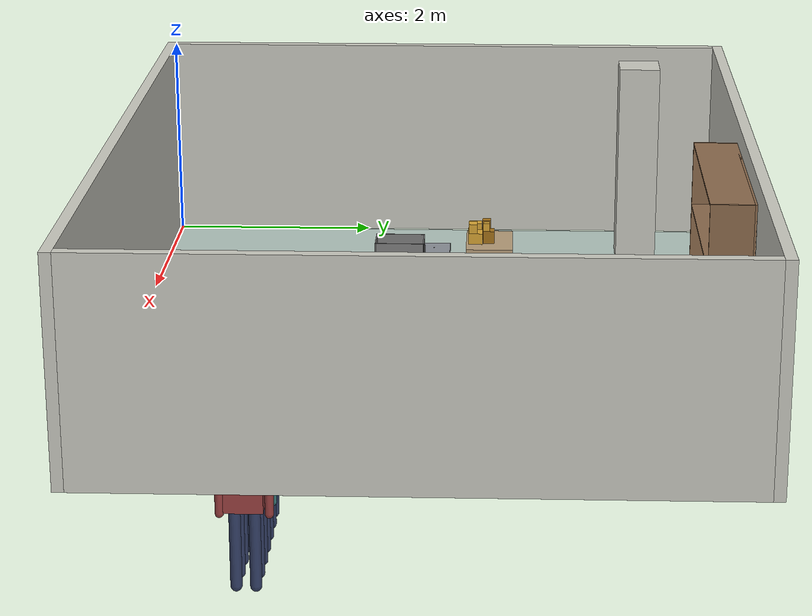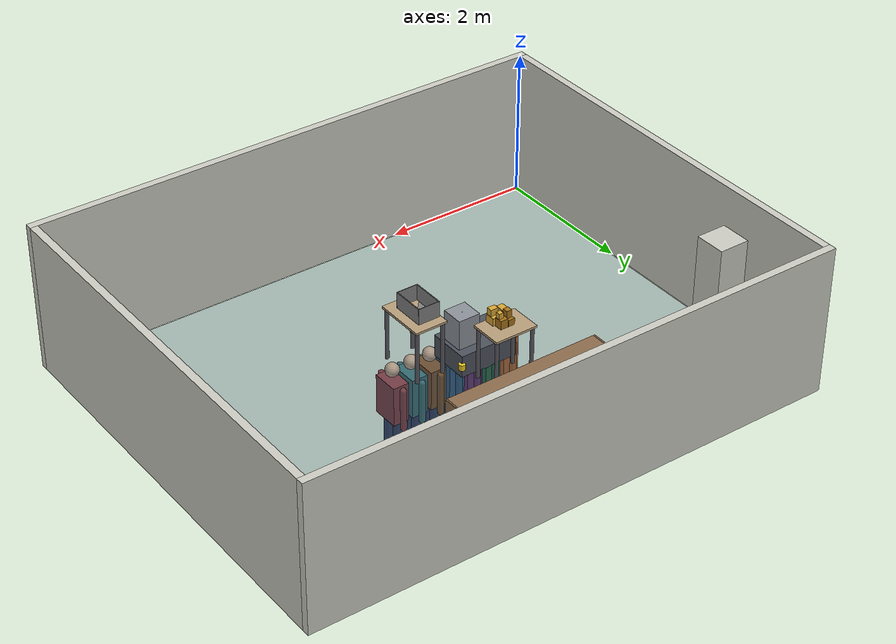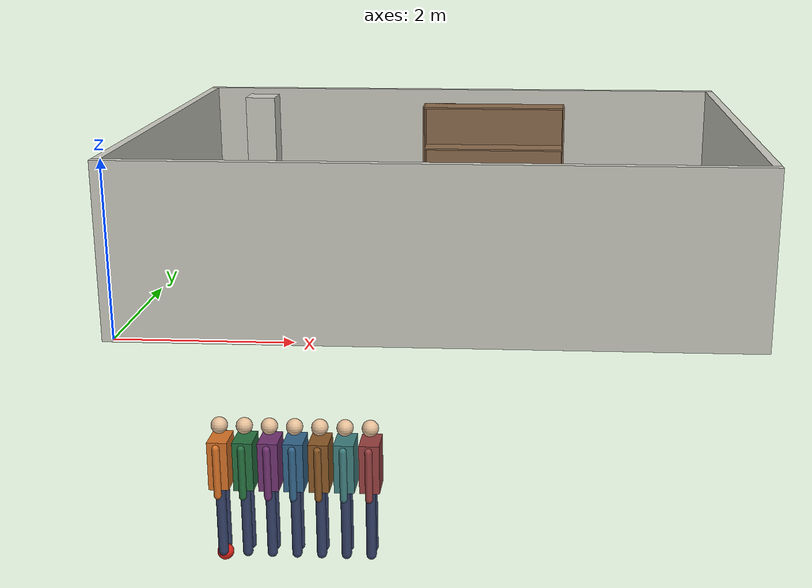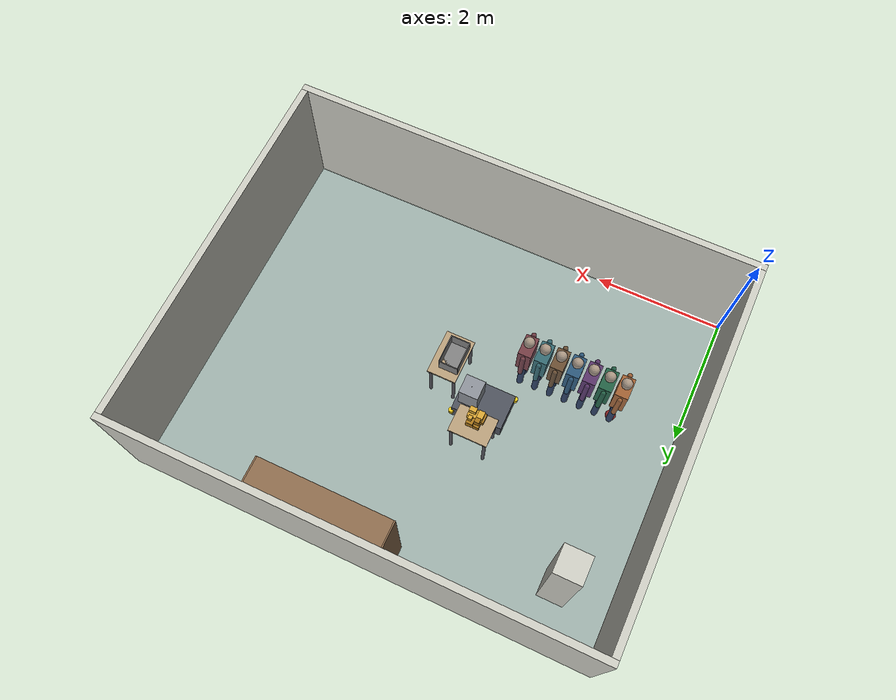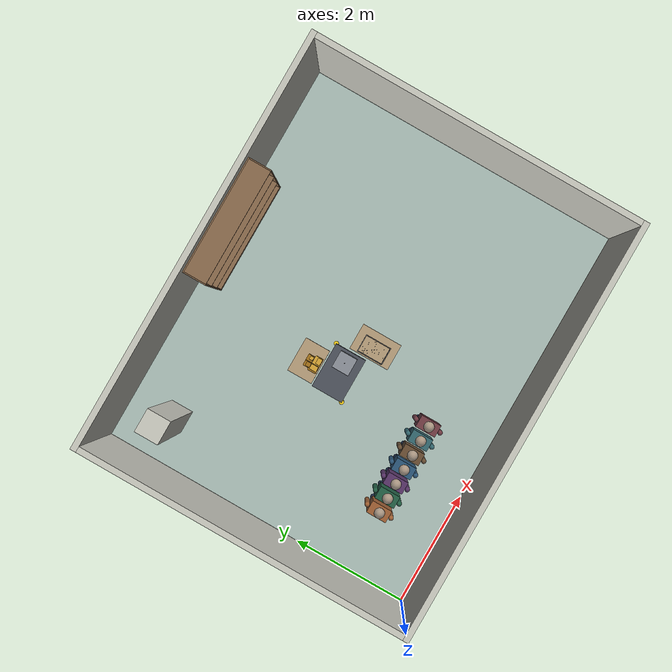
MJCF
<mujoco model="room_scene">
  <compiler angle="degree" autolimits="true"/>
  <option integrator="implicitfast" impratio="10" timestep="0.002"/>
  <!-- The old cell's extent: the same depth range for the cameras. -->
  <statistic center="3.0 2.8 0.0" extent="4.29"/>

  <visual>
    <headlight diffuse="0.6 0.6 0.6" ambient="0.3 0.3 0.3" specular="0 0 0"/>
    <rgba haze="0.15 0.25 0.35 1"/>
    <global azimuth="300" elevation="-20"/>
  </visual>

  <asset>
    <texture type="skybox" builtin="gradient" rgb1="0.3 0.5 0.7" rgb2="0 0 0" width="512" height="3072"/>
    <texture type="2d" name="groundplane" builtin="checker" mark="edge" rgb1="0.2 0.3 0.4" rgb2="0.1 0.2 0.3"
      markrgb="0.8 0.8 0.8" width="300" height="300"/>
    <material name="groundplane" texture="groundplane" texuniform="true" texrepeat="5 5" reflectance="0.2"/>
  </asset>

  <default>
    <default class="box">
      <geom condim="4" friction="0.6 0.01 0.001"/>
    </default>
    <default class="wall">
      <geom type="box" rgba="0.80 0.80 0.76 1"/>
    </default>
    <default class="shelf">
      <geom type="box" rgba="0.55 0.42 0.30 1"/>
    </default>
  </default>

  <worldbody>
    <frame name="room">
    <light pos="3.5 2.8 4" dir="0 0 -1" directional="true"/>
    <geom name="floor" pos="3.5 2.8 0" size="3.5 2.8 0.05" type="plane" material="groundplane"/>
    <geom name="wall_south" class="wall" pos="3.5 -0.05 1.0" size="3.6 0.05 1.0"/>
    <geom name="wall_north" class="wall" pos="3.5 5.65 1.0" size="3.6 0.05 1.0"/>
    <geom name="wall_west" class="wall" pos="-0.05 2.8 1.0" size="0.05 2.8 1.0"/>
    <geom name="wall_east" class="wall" pos="7.05 2.8 1.0" size="0.05 2.8 1.0"/>
    <geom name="pillar" class="wall" pos="0.8 4.8 1.0" size="0.20 0.20 1.0"/>
    <geom name="shelf_back" class="shelf" pos="4.0 5.59 0.9" size="1.0 0.01 0.9"/>
    <geom name="shelf_side_w" class="shelf" pos="3.01 5.4 0.9" size="0.01 0.20 0.9"/>
    <geom name="shelf_side_e" class="shelf" pos="4.99 5.4 0.9" size="0.01 0.20 0.9"/>
    <geom name="shelf_board0" class="shelf" pos="4.0 5.4 0.05" size="0.98 0.20 0.05"/>
    <geom name="shelf_board1" class="shelf" pos="4.0 5.4 0.60" size="0.98 0.20 0.01"/>
    <geom name="shelf_board2" class="shelf" pos="4.0 5.4 1.20" size="0.98 0.20 0.01"/>
    <geom name="shelf_board3" class="shelf" pos="4.0 5.4 1.79" size="0.98 0.20 0.01"/>
    </frame>

    <!-- The cell at scene.CELL_POSE (x, y, yaw); z = the arm's mount height. -->
    <frame name="cell" pos="3.0 2.8 0.75" euler="0 0 90">
      <include file="cell_container.xml"/>
    </frame>

    <body name="base_link" pos="2.8 2.80 0" euler="0 0 0">
      <freejoint name="base_free"/>
      <inertial pos="0.03 0 0.22" mass="110" diaginertia="3.7 6.7 8.7"/>
      <geom name="chassis" type="box" pos="0 0 0.19" size="0.40 0.28 0.15" rgba="0.30 0.32 0.36 1"/>
      <geom name="pedestal" type="box" pos="0.20 0 0.545" size="0.15 0.15 0.205" rgba="0.55 0.57 0.60 1"/>
      <site name="arm_mount" pos="0.20 0 0.75" euler="0 0 90"/>
      <site name="lidar_0" type="cylinder" pos="0.40 0.28 0.20" euler="0 0 45" size="0.04 0.04" rgba="0.95 0.80 0.10 1"/>
      <site name="lidar_1" type="cylinder" pos="-0.40 -0.28 0.20" euler="0 0 -135" size="0.04 0.04" rgba="0.95 0.80 0.10 1"/>
      <site name="imu" pos="0 0 0.20"/>
      <body name="wheel_left_mount" pos="0 0.25 0.10">
        <joint name="wheel_left_suspension" type="slide" axis="0 0 1" range="-0.02 0.02" stiffness="40000"
          springref="-0.01" damping="300"/>
        <inertial pos="0 0 0" mass="1.0" diaginertia="0.002 0.002 0.002"/>
        <body name="wheel_left">
          <joint name="wheel_left" type="hinge" axis="0 1 0" damping="0.05" armature="0.1"/>
          <inertial pos="0 0 0" mass="2.0" diaginertia="0.0054 0.01 0.0054"/>
          <geom name="wheel_left" type="ellipsoid" size="0.10 0.025 0.10"
            friction="1.0 0.005 0.0001" rgba="0.10 0.10 0.10 1"/>
        </body>
      </body>
      <body name="wheel_right_mount" pos="0 -0.25 0.10">
        <joint name="wheel_right_suspension" type="slide" axis="0 0 1" range="-0.02 0.02" stiffness="40000"
          springref="-0.01" damping="300"/>
        <inertial pos="0 0 0" mass="1.0" diaginertia="0.002 0.002 0.002"/>
        <body name="wheel_right">
          <joint name="wheel_right" type="hinge" axis="0 1 0" damping="0.05" armature="0.1"/>
          <inertial pos="0 0 0" mass="2.0" diaginertia="0.0054 0.01 0.0054"/>
          <geom name="wheel_right" type="ellipsoid" size="0.10 0.025 0.10"
            friction="1.0 0.005 0.0001" rgba="0.10 0.10 0.10 1"/>
        </body>
      </body>
      <body name="caster_fl" pos="0.32 0.20 0.04">
        <joint type="ball" damping="0.002"/>
        <geom type="sphere" size="0.04" mass="0.3" friction="0.6 0.005 0.0001" rgba="0.15 0.15 0.15 1"/>
      </body>
      <body name="caster_fr" pos="0.32 -0.20 0.04">
        <joint type="ball" damping="0.002"/>
        <geom type="sphere" size="0.04" mass="0.3" friction="0.6 0.005 0.0001" rgba="0.15 0.15 0.15 1"/>
      </body>
      <body name="caster_rl" pos="-0.32 0.20 0.04">
        <joint type="ball" damping="0.002"/>
        <geom type="sphere" size="0.04" mass="0.3" friction="0.6 0.005 0.0001" rgba="0.15 0.15 0.15 1"/>
      </body>
      <body name="caster_rr" pos="-0.32 -0.20 0.04">
        <joint type="ball" damping="0.002"/>
        <geom type="sphere" size="0.04" mass="0.3" friction="0.6 0.005 0.0001" rgba="0.15 0.15 0.15 1"/>
      </body>
    </body>

    <body name="dynamic_obstacle" mocap="true" pos="0.9 0.9 -3.0">
      <geom type="sphere" size="0.10" rgba="0.9 0.15 0.1 1" contype="0" conaffinity="0"/>
    </body>
    <body name="person_obstacle" mocap="true" pos="0.9 0.9 -3.0">
      <geom name="person_leg_l" type="capsule" fromto="0 0.10 0.06 0 0.10 0.88" size="0.06" rgba="0.20 0.25 0.40 1" contype="0" conaffinity="0"/>
      <geom name="person_leg_r" type="capsule" fromto="0 -0.10 0.06 0 -0.10 0.88" size="0.06" rgba="0.20 0.25 0.40 1" contype="0" conaffinity="0"/>
      <geom name="person_torso" type="box" pos="0 0 1.20" size="0.12 0.20 0.30" rgba="0.85 0.45 0.15 1" contype="0" conaffinity="0"/>
      <geom name="person_arm_l" type="capsule" fromto="0 0.25 0.85 0 0.25 1.45" size="0.045" rgba="0.85 0.45 0.15 1" contype="0" conaffinity="0"/>
      <geom name="person_arm_r" type="capsule" fromto="0 -0.25 0.85 0 -0.25 1.45" size="0.045" rgba="0.85 0.45 0.15 1" contype="0" conaffinity="0"/>
      <geom name="person_head" type="sphere" pos="0 0 1.65" size="0.10" rgba="0.90 0.75 0.60 1" contype="0" conaffinity="0"/>
    </body>
    <!-- More people for the mobile scenarios (person_1..6), the same size; parked
         below the floor until a scenario moves them. -->
    <body name="person_1" mocap="true" pos="1.2 0.9 -3.0">
      <geom type="capsule" fromto="0 0.10 0.06 0 0.10 0.88" size="0.06" rgba="0.20 0.25 0.40 1" contype="0" conaffinity="0"/>
      <geom type="capsule" fromto="0 -0.10 0.06 0 -0.10 0.88" size="0.06" rgba="0.20 0.25 0.40 1" contype="0" conaffinity="0"/>
      <geom type="box" pos="0 0 1.20" size="0.12 0.20 0.30" rgba="0.15 0.45 0.25 1" contype="0" conaffinity="0"/>
      <geom type="capsule" fromto="0 0.25 0.85 0 0.25 1.45" size="0.045" rgba="0.15 0.45 0.25 1" contype="0" conaffinity="0"/>
      <geom type="capsule" fromto="0 -0.25 0.85 0 -0.25 1.45" size="0.045" rgba="0.15 0.45 0.25 1" contype="0" conaffinity="0"/>
      <geom type="sphere" pos="0 0 1.65" size="0.10" rgba="0.90 0.75 0.60 1" contype="0" conaffinity="0"/>
    </body>
    <body name="person_2" mocap="true" pos="1.5 0.9 -3.0">
      <geom type="capsule" fromto="0 0.10 0.06 0 0.10 0.88" size="0.06" rgba="0.20 0.25 0.40 1" contype="0" conaffinity="0"/>
      <geom type="capsule" fromto="0 -0.10 0.06 0 -0.10 0.88" size="0.06" rgba="0.20 0.25 0.40 1" contype="0" conaffinity="0"/>
      <geom type="box" pos="0 0 1.20" size="0.12 0.20 0.30" rgba="0.45 0.20 0.45 1" contype="0" conaffinity="0"/>
      <geom type="capsule" fromto="0 0.25 0.85 0 0.25 1.45" size="0.045" rgba="0.45 0.20 0.45 1" contype="0" conaffinity="0"/>
      <geom type="capsule" fromto="0 -0.25 0.85 0 -0.25 1.45" size="0.045" rgba="0.45 0.20 0.45 1" contype="0" conaffinity="0"/>
      <geom type="sphere" pos="0 0 1.65" size="0.10" rgba="0.90 0.75 0.60 1" contype="0" conaffinity="0"/>
    </body>
    <body name="person_3" mocap="true" pos="1.8 0.9 -3.0">
      <geom type="capsule" fromto="0 0.10 0.06 0 0.10 0.88" size="0.06" rgba="0.20 0.25 0.40 1" contype="0" conaffinity="0"/>
      <geom type="capsule" fromto="0 -0.10 0.06 0 -0.10 0.88" size="0.06" rgba="0.20 0.25 0.40 1" contype="0" conaffinity="0"/>
      <geom type="box" pos="0 0 1.20" size="0.12 0.20 0.30" rgba="0.20 0.40 0.55 1" contype="0" conaffinity="0"/>
      <geom type="capsule" fromto="0 0.25 0.85 0 0.25 1.45" size="0.045" rgba="0.20 0.40 0.55 1" contype="0" conaffinity="0"/>
      <geom type="capsule" fromto="0 -0.25 0.85 0 -0.25 1.45" size="0.045" rgba="0.20 0.40 0.55 1" contype="0" conaffinity="0"/>
      <geom type="sphere" pos="0 0 1.65" size="0.10" rgba="0.90 0.75 0.60 1" contype="0" conaffinity="0"/>
    </body>
    <body name="person_4" mocap="true" pos="2.1 0.9 -3.0">
      <geom type="capsule" fromto="0 0.10 0.06 0 0.10 0.88" size="0.06" rgba="0.20 0.25 0.40 1" contype="0" conaffinity="0"/>
      <geom type="capsule" fromto="0 -0.10 0.06 0 -0.10 0.88" size="0.06" rgba="0.20 0.25 0.40 1" contype="0" conaffinity="0"/>
      <geom type="box" pos="0 0 1.20" size="0.12 0.20 0.30" rgba="0.55 0.35 0.15 1" contype="0" conaffinity="0"/>
      <geom type="capsule" fromto="0 0.25 0.85 0 0.25 1.45" size="0.045" rgba="0.55 0.35 0.15 1" contype="0" conaffinity="0"/>
      <geom type="capsule" fromto="0 -0.25 0.85 0 -0.25 1.45" size="0.045" rgba="0.55 0.35 0.15 1" contype="0" conaffinity="0"/>
      <geom type="sphere" pos="0 0 1.65" size="0.10" rgba="0.90 0.75 0.60 1" contype="0" conaffinity="0"/>
    </body>
    <body name="person_5" mocap="true" pos="2.4 0.9 -3.0">
      <geom type="capsule" fromto="0 0.10 0.06 0 0.10 0.88" size="0.06" rgba="0.20 0.25 0.40 1" contype="0" conaffinity="0"/>
      <geom type="capsule" fromto="0 -0.10 0.06 0 -0.10 0.88" size="0.06" rgba="0.20 0.25 0.40 1" contype="0" conaffinity="0"/>
      <geom type="box" pos="0 0 1.20" size="0.12 0.20 0.30" rgba="0.25 0.50 0.50 1" contype="0" conaffinity="0"/>
      <geom type="capsule" fromto="0 0.25 0.85 0 0.25 1.45" size="0.045" rgba="0.25 0.50 0.50 1" contype="0" conaffinity="0"/>
      <geom type="capsule" fromto="0 -0.25 0.85 0 -0.25 1.45" size="0.045" rgba="0.25 0.50 0.50 1" contype="0" conaffinity="0"/>
      <geom type="sphere" pos="0 0 1.65" size="0.10" rgba="0.90 0.75 0.60 1" contype="0" conaffinity="0"/>
    </body>
    <body name="person_6" mocap="true" pos="2.7 0.9 -3.0">
      <geom type="capsule" fromto="0 0.10 0.06 0 0.10 0.88" size="0.06" rgba="0.20 0.25 0.40 1" contype="0" conaffinity="0"/>
      <geom type="capsule" fromto="0 -0.10 0.06 0 -0.10 0.88" size="0.06" rgba="0.20 0.25 0.40 1" contype="0" conaffinity="0"/>
      <geom type="box" pos="0 0 1.20" size="0.12 0.20 0.30" rgba="0.60 0.25 0.25 1" contype="0" conaffinity="0"/>
      <geom type="capsule" fromto="0 0.25 0.85 0 0.25 1.45" size="0.045" rgba="0.60 0.25 0.25 1" contype="0" conaffinity="0"/>
      <geom type="capsule" fromto="0 -0.25 0.85 0 -0.25 1.45" size="0.045" rgba="0.60 0.25 0.25 1" contype="0" conaffinity="0"/>
      <geom type="sphere" pos="0 0 1.65" size="0.10" rgba="0.90 0.75 0.60 1" contype="0" conaffinity="0"/>
    </body>
  </worldbody>

  <contact>
    <!-- The wheels sit in the chassis, one body (the suspension) apart. -->
    <exclude body1="base_link" body2="wheel_left"/>
    <exclude body1="base_link" body2="wheel_right"/>
    <exclude body1="world" body2="wheel_left"/>
    <exclude body1="world" body2="wheel_right"/>
    <pair geom1="floor" geom2="wheel_left" condim="3" friction="1 1 0.005 0.0001 0.0001" solref="0.005 1"
      solimp="0.999 0.9999 0.001"/>
    <pair geom1="floor" geom2="wheel_right" condim="3" friction="1 1 0.005 0.0001 0.0001" solref="0.005 1"
      solimp="0.999 0.9999 0.001"/>
  </contact>

  <actuator>
    <motor name="wheel_left_motor" joint="wheel_left" ctrlrange="-30 30"/>
    <motor name="wheel_right_motor" joint="wheel_right" ctrlrange="-30 30"/>
  </actuator>

  <equality>
    <!-- Shared by all boxes: mujoco_sim_node sets body2 and relpose at each
         pick. -->
    <weld name="box_carry" body1="attachment" body2="cbox_0" active="false"/>
    <connect name="wheel_left_stick" body1="wheel_left" anchor="0 0 -0.10" active="false"/>
    <connect name="wheel_right_stick" body1="wheel_right" anchor="0 0 -0.10" active="false"/>
  </equality>

  <sensor>
    <!-- Wrist force/torque sensor (a flange load cell). -->
    <force name="wrist_force" site="attachment_site"/>
    <torque name="wrist_torque" site="attachment_site"/>
    <!-- The base's IMU. -->
    <gyro name="imu_gyro" site="imu"/>
    <accelerometer name="imu_accel" site="imu"/>
  </sensor>
</mujoco>

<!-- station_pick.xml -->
<mujoco model="station_pick">
    <!-- The pile's table, its top at the arm's mount height. Must match
         PICK_TABLE_BOUNDS in scene.py. -->
    <geom name="pick_table_top" type="box" pos="0.520 0.250 -0.015" size="0.220 0.300 0.015" rgba="0.72 0.62 0.48 1"/>
    <geom name="pick_table_leg0" type="cylinder" fromto="0.340 -0.010 -0.750 0.340 -0.010 -0.030" size="0.025" rgba="0.35 0.35 0.38 1"/>
    <geom name="pick_table_leg1" type="cylinder" fromto="0.700 -0.010 -0.750 0.700 -0.010 -0.030" size="0.025" rgba="0.35 0.35 0.38 1"/>
    <geom name="pick_table_leg2" type="cylinder" fromto="0.340 0.510 -0.750 0.340 0.510 -0.030" size="0.025" rgba="0.35 0.35 0.38 1"/>
    <geom name="pick_table_leg3" type="cylinder" fromto="0.700 0.510 -0.750 0.700 0.510 -0.030" size="0.025" rgba="0.35 0.35 0.38 1"/>

    <body name="cbox_0" pos="0.3937 0.3187 0.0450">
      <freejoint/>
      <inertial mass="0.2" pos="0 0 0" diaginertia="3.75e-04 5.10e-04 6.15e-04"/>
      <geom type="box" size="0.0750 0.0600 0.0450" rgba="0.65 0.45 0.10 1" class="box"/>
    </body>
    <body name="cbox_1" pos="0.3863 0.1837 0.0525">
      <freejoint/>
      <inertial mass="0.2" pos="0 0 0" diaginertia="4.88e-04 4.88e-04 6.08e-04"/>
      <geom type="box" size="0.0675 0.0675 0.0525" rgba="0.85 0.65 0.20 1" class="box"/>
    </body>
    <body name="cbox_2" pos="0.5137 0.1987 0.0600">
      <freejoint/>
      <inertial mass="0.2" pos="0 0 0" diaginertia="4.24e-04 4.24e-04 3.68e-04"/>
      <geom type="box" size="0.0525 0.0525 0.0600" rgba="0.65 0.45 0.10 1" class="box"/>
    </body>
    <body name="cbox_3" pos="0.3863 0.3037 0.1275">
      <freejoint/>
      <inertial mass="0.2" pos="0 0 0" diaginertia="2.29e-04 3.34e-04 3.75e-04"/>
      <geom type="box" size="0.0600 0.0450 0.0375" rgba="0.85 0.65 0.20 1" class="box"/>
    </body>
    <body name="cbox_4" pos="0.5212 0.3037 0.0450">
      <freejoint/>
      <inertial mass="0.2" pos="0 0 0" diaginertia="2.70e-04 2.70e-04 2.70e-04"/>
      <geom type="box" size="0.0450 0.0450 0.0450" rgba="0.65 0.45 0.10 1" class="box"/>
    </body>
    <body name="cbox_5" pos="0.3638 0.1763 0.1500">
      <freejoint/>
      <inertial mass="0.2" pos="0 0 0" diaginertia="3.19e-04 2.29e-04 2.78e-04"/>
      <geom type="box" size="0.0375 0.0525 0.0450" rgba="0.85 0.65 0.20 1" class="box"/>
    </body>
    <body name="cbox_6" pos="0.4912 0.2963 0.1425">
      <freejoint/>
      <inertial mass="0.2" pos="0 0 0" diaginertia="2.78e-04 2.78e-04 1.88e-04"/>
      <geom type="box" size="0.0375 0.0375 0.0525" rgba="0.65 0.45 0.10 1" class="box"/>
    </body>
    <body name="cbox_7" pos="0.4912 0.1837 0.1575">
      <freejoint/>
      <inertial mass="0.2" pos="0 0 0" diaginertia="1.54e-04 1.54e-04 1.20e-04"/>
      <geom type="box" size="0.0300 0.0300 0.0375" rgba="0.85 0.65 0.20 1" class="box"/>
    </body>
</mujoco>

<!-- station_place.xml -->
<mujoco model="station_place">
    <!-- The tray's table, its top at the arm's mount height. Must match
         PLACE_TABLE_BOUNDS in scene.py. -->
    <geom name="place_table_top" type="box" pos="-0.300 -0.475 -0.015" size="0.350 0.225 0.015" rgba="0.72 0.62 0.48 1"/>
    <geom name="place_table_leg0" type="cylinder" fromto="-0.610 -0.660 -0.750 -0.610 -0.660 -0.030" size="0.025" rgba="0.35 0.35 0.38 1"/>
    <geom name="place_table_leg1" type="cylinder" fromto="0.010 -0.660 -0.750 0.010 -0.660 -0.030" size="0.025" rgba="0.35 0.35 0.38 1"/>
    <geom name="place_table_leg2" type="cylinder" fromto="-0.610 -0.290 -0.750 -0.610 -0.290 -0.030" size="0.025" rgba="0.35 0.35 0.38 1"/>
    <geom name="place_table_leg3" type="cylinder" fromto="0.010 -0.290 -0.750 0.010 -0.290 -0.030" size="0.025" rgba="0.35 0.35 0.38 1"/>

    <!-- Destination tray (floor and 4 walls): for obstacle
         avoidance, display and contact. Must match DEST_TRAY_* in scene.py; MJCF has
         no expressions, so the numbers are literal. -->
    <geom name="dest_tray_floor" type="box" pos="-0.3000 -0.4250 -0.0050" size="0.2250 0.1500 0.0050"
      rgba="0.5 0.5 0.5 1"/>
    <geom name="dest_tray_wall_west" type="box" pos="-0.5200 -0.4250 0.1100" size="0.0050 0.1500 0.1100"
      rgba="0.5 0.5 0.5 1"/>
    <geom name="dest_tray_wall_east" type="box" pos="-0.0800 -0.4250 0.1100" size="0.0050 0.1500 0.1100"
      rgba="0.5 0.5 0.5 1"/>
    <geom name="dest_tray_wall_south" type="box" pos="-0.3000 -0.5700 0.1100" size="0.2250 0.0050 0.1100"
      rgba="0.5 0.5 0.5 1"/>
    <geom name="dest_tray_wall_north" type="box" pos="-0.3000 -0.2800 0.1100" size="0.2250 0.0050 0.1100"
      rgba="0.5 0.5 0.5 1"/>
</mujoco>

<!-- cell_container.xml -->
<mujoco model="cell_container">
    <include file="station_pick.xml"/>
    <include file="station_place.xml"/>

    <camera name="workspace_cam" pos="0.0 -0.20 2.75" xyaxes="1 0 0 0 1 0" fovy="70"/>
</mujoco>
